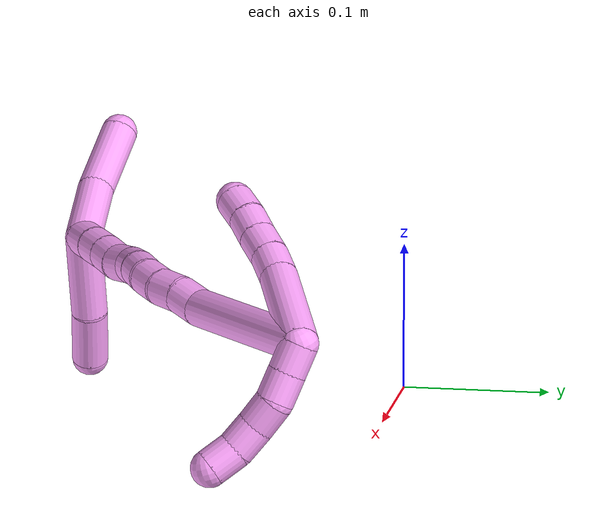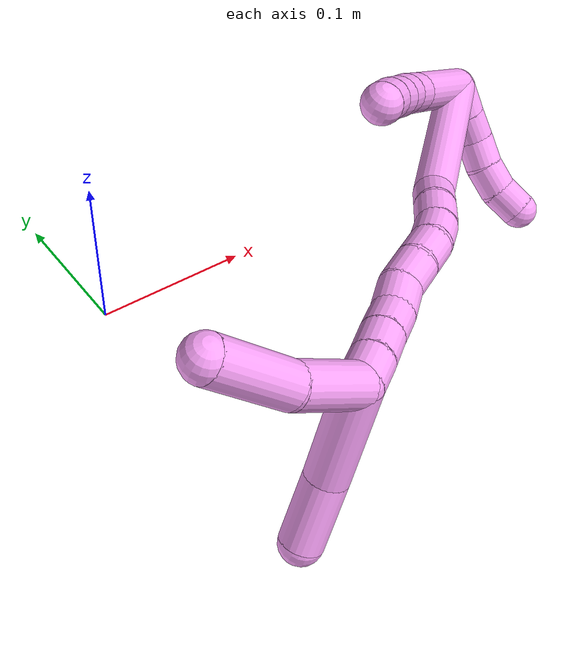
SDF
<sdf version="1.7">
 <world name="default">
  <model name="4">
   <static>0</static>
   <link name="4">
    <collision name="collision-cylinder-e_1_2_8">
     <pose>-0.028597 -0.012975 0.013911 0.750611 -0.983809 -0.416108</pose>
     <geometry><cylinder><radius>0.0125</radius><length>0.068693</length></cylinder></geometry>
     <surface>
      <friction><ode><mu>1.16</mu><mu2>1.16</mu2><slip1>0</slip1><slip2>0</slip2></ode></friction>
      <contact><ode><kp>1e+06</kp><kd>1</kd><max_vel>0</max_vel><min_depth>0.001</min_depth></ode></contact>
     </surface>
    </collision>
    <visual name="visual-cylinder-e_1_2_8">
     <pose>-0.028597 -0.012975 0.013911 0.750611 -0.983809 -0.416108</pose>
     <geometry><cylinder><radius>0.0125</radius><length>0.068693</length></cylinder></geometry>
     <material><ambient>1 0.65098 0.996078 1</ambient></material>
    </visual>
    <collision name="collision-cylinder-e_2_8_9">
     <pose>-0.065273 -0.030426 0.032711 0.74125 -0.883654 -0.363552</pose>
     <geometry><cylinder><radius>0.0125</radius><length>0.020901</length></cylinder></geometry>
     <surface>
      <friction><ode><mu>1.16</mu><mu2>1.16</mu2><slip1>0</slip1><slip2>0</slip2></ode></friction>
      <contact><ode><kp>1e+06</kp><kd>1</kd><max_vel>0</max_vel><min_depth>0.001</min_depth></ode></contact>
     </surface>
    </collision>
    <visual name="visual-cylinder-e_2_8_9">
     <pose>-0.065273 -0.030426 0.032711 0.74125 -0.883654 -0.363552</pose>
     <geometry><cylinder><radius>0.0125</radius><length>0.020901</length></cylinder></geometry>
     <material><ambient>1 0.65098 0.996078 1</ambient></material>
    </visual>
    <collision name="collision-cylinder-e_3_9_10">
     <pose>-0.080615 -0.040122 0.042507 0.816338 -0.792375 -0.357927</pose>
     <geometry><cylinder><radius>0.0125</radius><length>0.020403</length></cylinder></geometry>
     <surface>
      <friction><ode><mu>1.16</mu><mu2>1.16</mu2><slip1>0</slip1><slip2>0</slip2></ode></friction>
      <contact><ode><kp>1e+06</kp><kd>1</kd><max_vel>0</max_vel><min_depth>0.001</min_depth></ode></contact>
     </surface>
    </collision>
    <visual name="visual-cylinder-e_3_9_10">
     <pose>-0.080615 -0.040122 0.042507 0.816338 -0.792375 -0.357927</pose>
     <geometry><cylinder><radius>0.0125</radius><length>0.020403</length></cylinder></geometry>
     <material><ambient>1 0.65098 0.996078 1</ambient></material>
    </visual>
    <collision name="collision-cylinder-e_4_10_11">
     <pose>-0.095113 -0.050112 0.052403 0.762992 -0.808745 -0.340034</pose>
     <geometry><cylinder><radius>0.0125</radius><length>0.02</length></cylinder></geometry>
     <surface>
      <friction><ode><mu>1.16</mu><mu2>1.16</mu2><slip1>0</slip1><slip2>0</slip2></ode></friction>
      <contact><ode><kp>1e+06</kp><kd>1</kd><max_vel>0</max_vel><min_depth>0.001</min_depth></ode></contact>
     </surface>
    </collision>
    <visual name="visual-cylinder-e_4_10_11">
     <pose>-0.095113 -0.050112 0.052403 0.762992 -0.808745 -0.340034</pose>
     <geometry><cylinder><radius>0.0125</radius><length>0.02</length></cylinder></geometry>
     <material><ambient>1 0.65098 0.996078 1</ambient></material>
    </visual>
    <collision name="collision-cylinder-e_5_11_6">
     <pose>-0.109274 -0.060434 0.062003 0.877689 -0.764944 -0.373244</pose>
     <geometry><cylinder><radius>0.0125</radius><length>0.020004</length></cylinder></geometry>
     <surface>
      <friction><ode><mu>1.16</mu><mu2>1.16</mu2><slip1>0</slip1><slip2>0</slip2></ode></friction>
      <contact><ode><kp>1e+06</kp><kd>1</kd><max_vel>0</max_vel><min_depth>0.001</min_depth></ode></contact>
     </surface>
    </collision>
    <visual name="visual-cylinder-e_5_11_6">
     <pose>-0.109274 -0.060434 0.062003 0.877689 -0.764944 -0.373244</pose>
     <geometry><cylinder><radius>0.0125</radius><length>0.020004</length></cylinder></geometry>
     <material><ambient>1 0.65098 0.996078 1</ambient></material>
    </visual>
    <collision name="collision-cylinder-e_1_2_12">
     <pose>0.004015 -0.005563 -0.007276 2.48884 0.413156 1.10875</pose>
     <geometry><cylinder><radius>0.0125</radius><length>0.02</length></cylinder></geometry>
     <surface>
      <friction><ode><mu>1.16</mu><mu2>1.16</mu2><slip1>0</slip1><slip2>0</slip2></ode></friction>
      <contact><ode><kp>1e+06</kp><kd>1</kd><max_vel>0</max_vel><min_depth>0.001</min_depth></ode></contact>
     </surface>
    </collision>
    <visual name="visual-cylinder-e_1_2_12">
     <pose>0.004015 -0.005563 -0.007276 2.48884 0.413156 1.10875</pose>
     <geometry><cylinder><radius>0.0125</radius><length>0.02</length></cylinder></geometry>
     <material><ambient>1 0.65098 0.996078 1</ambient></material>
    </visual>
    <collision name="collision-cylinder-e_2_12_13">
     <pose>0.012387 -0.016563 -0.021724 2.49298 0.450808 1.1972</pose>
     <geometry><cylinder><radius>0.0125</radius><length>0.02</length></cylinder></geometry>
     <surface>
      <friction><ode><mu>1.16</mu><mu2>1.16</mu2><slip1>0</slip1><slip2>0</slip2></ode></friction>
      <contact><ode><kp>1e+06</kp><kd>1</kd><max_vel>0</max_vel><min_depth>0.001</min_depth></ode></contact>
     </surface>
    </collision>
    <visual name="visual-cylinder-e_2_12_13">
     <pose>0.012387 -0.016563 -0.021724 2.49298 0.450808 1.1972</pose>
     <geometry><cylinder><radius>0.0125</radius><length>0.02</length></cylinder></geometry>
     <material><ambient>1 0.65098 0.996078 1</ambient></material>
    </visual>
    <collision name="collision-cylinder-e_3_13_14">
     <pose>0.019301 -0.029787 -0.034627 2.20507 0.258553 0.503175</pose>
     <geometry><cylinder><radius>0.0125</radius><length>0.02</length></cylinder></geometry>
     <surface>
      <friction><ode><mu>1.16</mu><mu2>1.16</mu2><slip1>0</slip1><slip2>0</slip2></ode></friction>
      <contact><ode><kp>1e+06</kp><kd>1</kd><max_vel>0</max_vel><min_depth>0.001</min_depth></ode></contact>
     </surface>
    </collision>
    <visual name="visual-cylinder-e_3_13_14">
     <pose>0.019301 -0.029787 -0.034627 2.20507 0.258553 0.503175</pose>
     <geometry><cylinder><radius>0.0125</radius><length>0.02</length></cylinder></geometry>
     <material><ambient>1 0.65098 0.996078 1</ambient></material>
    </visual>
    <collision name="collision-cylinder-e_4_14_15">
     <pose>0.026178 -0.045081 -0.045353 2.15816 0.446785 0.802341</pose>
     <geometry><cylinder><radius>0.0125</radius><length>0.02</length></cylinder></geometry>
     <surface>
      <friction><ode><mu>1.16</mu><mu2>1.16</mu2><slip1>0</slip1><slip2>0</slip2></ode></friction>
      <contact><ode><kp>1e+06</kp><kd>1</kd><max_vel>0</max_vel><min_depth>0.001</min_depth></ode></contact>
     </surface>
    </collision>
    <visual name="visual-cylinder-e_4_14_15">
     <pose>0.026178 -0.045081 -0.045353 2.15816 0.446785 0.802341</pose>
     <geometry><cylinder><radius>0.0125</radius><length>0.02</length></cylinder></geometry>
     <material><ambient>1 0.65098 0.996078 1</ambient></material>
    </visual>
    <collision name="collision-cylinder-e_5_15_5">
     <pose>0.036154 -0.060444 -0.052865 1.88057 0.600997 0.802991</pose>
     <geometry><cylinder><radius>0.0125</radius><length>0.02</length></cylinder></geometry>
     <surface>
      <friction><ode><mu>1.16</mu><mu2>1.16</mu2><slip1>0</slip1><slip2>0</slip2></ode></friction>
      <contact><ode><kp>1e+06</kp><kd>1</kd><max_vel>0</max_vel><min_depth>0.001</min_depth></ode></contact>
     </surface>
    </collision>
    <visual name="visual-cylinder-e_5_15_5">
     <pose>0.036154 -0.060444 -0.052865 1.88057 0.600997 0.802991</pose>
     <geometry><cylinder><radius>0.0125</radius><length>0.02</length></cylinder></geometry>
     <material><ambient>1 0.65098 0.996078 1</ambient></material>
    </visual>
    <collision name="collision-cylinder-e_1_2_16">
     <pose>-0.036287 -0.047121 0.006848 1.42647 -0.651187 -0.568365</pose>
     <geometry><cylinder><radius>0.0125</radius><length>0.119733</length></cylinder></geometry>
     <surface>
      <friction><ode><mu>1.16</mu><mu2>1.16</mu2><slip1>0</slip1><slip2>0</slip2></ode></friction>
      <contact><ode><kp>1e+06</kp><kd>1</kd><max_vel>0</max_vel><min_depth>0.001</min_depth></ode></contact>
     </surface>
    </collision>
    <visual name="visual-cylinder-e_1_2_16">
     <pose>-0.036287 -0.047121 0.006848 1.42647 -0.651187 -0.568365</pose>
     <geometry><cylinder><radius>0.0125</radius><length>0.119733</length></cylinder></geometry>
     <material><ambient>1 0.65098 0.996078 1</ambient></material>
    </visual>
    <collision name="collision-cylinder-e_2_16_17">
     <pose>-0.077817 -0.101854 0.017788 1.07765 -0.545314 -0.33127</pose>
     <geometry><cylinder><radius>0.0125</radius><length>0.020218</length></cylinder></geometry>
     <surface>
      <friction><ode><mu>1.16</mu><mu2>1.16</mu2><slip1>0</slip1><slip2>0</slip2></ode></friction>
      <contact><ode><kp>1e+06</kp><kd>1</kd><max_vel>0</max_vel><min_depth>0.001</min_depth></ode></contact>
     </surface>
    </collision>
    <visual name="visual-cylinder-e_2_16_17">
     <pose>-0.077817 -0.101854 0.017788 1.07765 -0.545314 -0.33127</pose>
     <geometry><cylinder><radius>0.0125</radius><length>0.020218</length></cylinder></geometry>
     <material><ambient>1 0.65098 0.996078 1</ambient></material>
    </visual>
    <collision name="collision-cylinder-e_3_17_18">
     <pose>-0.088005 -0.117798 0.024383 1.27896 -0.516867 -0.388256</pose>
     <geometry><cylinder><radius>0.0125</radius><length>0.02001</length></cylinder></geometry>
     <surface>
      <friction><ode><mu>1.16</mu><mu2>1.16</mu2><slip1>0</slip1><slip2>0</slip2></ode></friction>
      <contact><ode><kp>1e+06</kp><kd>1</kd><max_vel>0</max_vel><min_depth>0.001</min_depth></ode></contact>
     </surface>
    </collision>
    <visual name="visual-cylinder-e_3_17_18">
     <pose>-0.088005 -0.117798 0.024383 1.27896 -0.516867 -0.388256</pose>
     <geometry><cylinder><radius>0.0125</radius><length>0.02001</length></cylinder></geometry>
     <material><ambient>1 0.65098 0.996078 1</ambient></material>
    </visual>
    <collision name="collision-cylinder-e_4_18_19">
     <pose>-0.099549 -0.133258 0.029321 1.24153 -0.719387 -0.525375</pose>
     <geometry><cylinder><radius>0.0125</radius><length>0.020034</length></cylinder></geometry>
     <surface>
      <friction><ode><mu>1.16</mu><mu2>1.16</mu2><slip1>0</slip1><slip2>0</slip2></ode></friction>
      <contact><ode><kp>1e+06</kp><kd>1</kd><max_vel>0</max_vel><min_depth>0.001</min_depth></ode></contact>
     </surface>
    </collision>
    <visual name="visual-cylinder-e_4_18_19">
     <pose>-0.099549 -0.133258 0.029321 1.24153 -0.719387 -0.525375</pose>
     <geometry><cylinder><radius>0.0125</radius><length>0.020034</length></cylinder></geometry>
     <material><ambient>1 0.65098 0.996078 1</ambient></material>
    </visual>
    <collision name="collision-cylinder-e_5_19_20">
     <pose>-0.114097 -0.146405 0.032579 1.43514 -0.918395 -0.814799</pose>
     <geometry><cylinder><radius>0.0125</radius><length>0.020004</length></cylinder></geometry>
     <surface>
      <friction><ode><mu>1.16</mu><mu2>1.16</mu2><slip1>0</slip1><slip2>0</slip2></ode></friction>
      <contact><ode><kp>1e+06</kp><kd>1</kd><max_vel>0</max_vel><min_depth>0.001</min_depth></ode></contact>
     </surface>
    </collision>
    <visual name="visual-cylinder-e_5_19_20">
     <pose>-0.114097 -0.146405 0.032579 1.43514 -0.918395 -0.814799</pose>
     <geometry><cylinder><radius>0.0125</radius><length>0.020004</length></cylinder></geometry>
     <material><ambient>1 0.65098 0.996078 1</ambient></material>
    </visual>
    <collision name="collision-cylinder-e_6_20_21">
     <pose>-0.13002 -0.158412 0.032692 1.68852 -0.92313 -1.02051</pose>
     <geometry><cylinder><radius>0.0125</radius><length>0.02</length></cylinder></geometry>
     <surface>
      <friction><ode><mu>1.16</mu><mu2>1.16</mu2><slip1>0</slip1><slip2>0</slip2></ode></friction>
      <contact><ode><kp>1e+06</kp><kd>1</kd><max_vel>0</max_vel><min_depth>0.001</min_depth></ode></contact>
     </surface>
    </collision>
    <visual name="visual-cylinder-e_6_20_21">
     <pose>-0.13002 -0.158412 0.032692 1.68852 -0.92313 -1.02051</pose>
     <geometry><cylinder><radius>0.0125</radius><length>0.02</length></cylinder></geometry>
     <material><ambient>1 0.65098 0.996078 1</ambient></material>
    </visual>
    <collision name="collision-cylinder-e_7_21_22">
     <pose>-0.144232 -0.172218 0.032209 1.54187 -0.673406 -0.655568</pose>
     <geometry><cylinder><radius>0.0125</radius><length>0.02</length></cylinder></geometry>
     <surface>
      <friction><ode><mu>1.16</mu><mu2>1.16</mu2><slip1>0</slip1><slip2>0</slip2></ode></friction>
      <contact><ode><kp>1e+06</kp><kd>1</kd><max_vel>0</max_vel><min_depth>0.001</min_depth></ode></contact>
     </surface>
    </collision>
    <visual name="visual-cylinder-e_7_21_22">
     <pose>-0.144232 -0.172218 0.032209 1.54187 -0.673406 -0.655568</pose>
     <geometry><cylinder><radius>0.0125</radius><length>0.02</length></cylinder></geometry>
     <material><ambient>1 0.65098 0.996078 1</ambient></material>
    </visual>
    <collision name="collision-cylinder-e_8_22_23">
     <pose>-0.157618 -0.186747 0.034384 1.2884 -0.796514 -0.612168</pose>
     <geometry><cylinder><radius>0.0125</radius><length>0.02</length></cylinder></geometry>
     <surface>
      <friction><ode><mu>1.16</mu><mu2>1.16</mu2><slip1>0</slip1><slip2>0</slip2></ode></friction>
      <contact><ode><kp>1e+06</kp><kd>1</kd><max_vel>0</max_vel><min_depth>0.001</min_depth></ode></contact>
     </surface>
    </collision>
    <visual name="visual-cylinder-e_8_22_23">
     <pose>-0.157618 -0.186747 0.034384 1.2884 -0.796514 -0.612168</pose>
     <geometry><cylinder><radius>0.0125</radius><length>0.02</length></cylinder></geometry>
     <material><ambient>1 0.65098 0.996078 1</ambient></material>
    </visual>
    <collision name="collision-cylinder-e_9_23_24">
     <pose>-0.171674 -0.200471 0.038111 1.32225 -0.762455 -0.604519</pose>
     <geometry><cylinder><radius>0.0125</radius><length>0.02</length></cylinder></geometry>
     <surface>
      <friction><ode><mu>1.16</mu><mu2>1.16</mu2><slip1>0</slip1><slip2>0</slip2></ode></friction>
      <contact><ode><kp>1e+06</kp><kd>1</kd><max_vel>0</max_vel><min_depth>0.001</min_depth></ode></contact>
     </surface>
    </collision>
    <visual name="visual-cylinder-e_9_23_24">
     <pose>-0.171674 -0.200471 0.038111 1.32225 -0.762455 -0.604519</pose>
     <geometry><cylinder><radius>0.0125</radius><length>0.02</length></cylinder></geometry>
     <material><ambient>1 0.65098 0.996078 1</ambient></material>
    </visual>
    <collision name="collision-cylinder-e_10_24_1">
     <pose>-0.185773 -0.214321 0.041114 1.39377 -0.802579 -0.682495</pose>
     <geometry><cylinder><radius>0.0125</radius><length>0.02</length></cylinder></geometry>
     <surface>
      <friction><ode><mu>1.16</mu><mu2>1.16</mu2><slip1>0</slip1><slip2>0</slip2></ode></friction>
      <contact><ode><kp>1e+06</kp><kd>1</kd><max_vel>0</max_vel><min_depth>0.001</min_depth></ode></contact>
     </surface>
    </collision>
    <visual name="visual-cylinder-e_10_24_1">
     <pose>-0.185773 -0.214321 0.041114 1.39377 -0.802579 -0.682495</pose>
     <geometry><cylinder><radius>0.0125</radius><length>0.02</length></cylinder></geometry>
     <material><ambient>1 0.65098 0.996078 1</ambient></material>
    </visual>
    <collision name="collision-cylinder-e_1_1_25">
     <pose>-0.215059 -0.222109 0.05168 0.101118 -1.16888 -0.066925</pose>
     <geometry><cylinder><radius>0.0125</radius><length>0.048015</length></cylinder></geometry>
     <surface>
      <friction><ode><mu>1.16</mu><mu2>1.16</mu2><slip1>0</slip1><slip2>0</slip2></ode></friction>
      <contact><ode><kp>1e+06</kp><kd>1</kd><max_vel>0</max_vel><min_depth>0.001</min_depth></ode></contact>
     </surface>
    </collision>
    <visual name="visual-cylinder-e_1_1_25">
     <pose>-0.215059 -0.222109 0.05168 0.101118 -1.16888 -0.066925</pose>
     <geometry><cylinder><radius>0.0125</radius><length>0.048015</length></cylinder></geometry>
     <material><ambient>1 0.65098 0.996078 1</ambient></material>
    </visual>
    <collision name="collision-cylinder-e_2_25_4">
     <pose>-0.259799 -0.218573 0.072968 -0.359143 -1.05776 0.211383</pose>
     <geometry><cylinder><radius>0.0125</radius><length>0.051985</length></cylinder></geometry>
     <surface>
      <friction><ode><mu>1.16</mu><mu2>1.16</mu2><slip1>0</slip1><slip2>0</slip2></ode></friction>
      <contact><ode><kp>1e+06</kp><kd>1</kd><max_vel>0</max_vel><min_depth>0.001</min_depth></ode></contact>
     </surface>
    </collision>
    <visual name="visual-cylinder-e_2_25_4">
     <pose>-0.259799 -0.218573 0.072968 -0.359143 -1.05776 0.211383</pose>
     <geometry><cylinder><radius>0.0125</radius><length>0.051985</length></cylinder></geometry>
     <material><ambient>1 0.65098 0.996078 1</ambient></material>
    </visual>
    <collision name="collision-cylinder-e_1_1_26">
     <pose>-0.197058 -0.230993 0.014835 2.79824 -0.139255 -0.764863</pose>
     <geometry><cylinder><radius>0.0125</radius><length>0.058986</length></cylinder></geometry>
     <surface>
      <friction><ode><mu>1.16</mu><mu2>1.16</mu2><slip1>0</slip1><slip2>0</slip2></ode></friction>
      <contact><ode><kp>1e+06</kp><kd>1</kd><max_vel>0</max_vel><min_depth>0.001</min_depth></ode></contact>
     </surface>
    </collision>
    <visual name="visual-cylinder-e_1_1_26">
     <pose>-0.197058 -0.230993 0.014835 2.79824 -0.139255 -0.764863</pose>
     <geometry><cylinder><radius>0.0125</radius><length>0.058986</length></cylinder></geometry>
     <material><ambient>1 0.65098 0.996078 1</ambient></material>
    </visual>
    <collision name="collision-cylinder-e_2_26_3">
     <pose>-0.206383 -0.249517 -0.03049 2.68787 -0.257957 -1.02382</pose>
     <geometry><cylinder><radius>0.0125</radius><length>0.041014</length></cylinder></geometry>
     <surface>
      <friction><ode><mu>1.16</mu><mu2>1.16</mu2><slip1>0</slip1><slip2>0</slip2></ode></friction>
      <contact><ode><kp>1e+06</kp><kd>1</kd><max_vel>0</max_vel><min_depth>0.001</min_depth></ode></contact>
     </surface>
    </collision>
    <visual name="visual-cylinder-e_2_26_3">
     <pose>-0.206383 -0.249517 -0.03049 2.68787 -0.257957 -1.02382</pose>
     <geometry><cylinder><radius>0.0125</radius><length>0.041014</length></cylinder></geometry>
     <material><ambient>1 0.65098 0.996078 1</ambient></material>
    </visual>
    <collision name="collision-sphere-3">
     <pose>-0.211615 -0.258208 -0.048313 0 -0 0</pose>
     <geometry><sphere><radius>0.0125</radius></sphere></geometry>
     <surface>
      <friction><ode><mu>1.16</mu><mu2>1.16</mu2><slip1>0</slip1><slip2>0</slip2></ode></friction>
      <contact><ode><kp>1e+06</kp><kd>1</kd><max_vel>0</max_vel><min_depth>0.001</min_depth></ode></contact>
     </surface>
    </collision>
    <visual name="visual-sphere-3">
     <pose>-0.211615 -0.258208 -0.048313 0 -0 0</pose>
     <geometry><sphere><radius>0.0125</radius></sphere></geometry>
     <material><ambient>1 0.65098 0.996078 1</ambient></material>
    </visual>
    <collision name="collision-sphere-26">
     <pose>-0.201152 -0.240826 -0.012668 0 -0 0</pose>
     <geometry><sphere><radius>0.0125</radius></sphere></geometry>
     <surface>
      <friction><ode><mu>1.16</mu><mu2>1.16</mu2><slip1>0</slip1><slip2>0</slip2></ode></friction>
      <contact><ode><kp>1e+06</kp><kd>1</kd><max_vel>0</max_vel><min_depth>0.001</min_depth></ode></contact>
     </surface>
    </collision>
    <visual name="visual-sphere-26">
     <pose>-0.201152 -0.240826 -0.012668 0 -0 0</pose>
     <geometry><sphere><radius>0.0125</radius></sphere></geometry>
     <material><ambient>1 0.65098 0.996078 1</ambient></material>
    </visual>
    <collision name="collision-sphere-4">
     <pose>-0.282446 -0.214089 0.084911 0 -0 0</pose>
     <geometry><sphere><radius>0.0125</radius></sphere></geometry>
     <surface>
      <friction><ode><mu>1.16</mu><mu2>1.16</mu2><slip1>0</slip1><slip2>0</slip2></ode></friction>
      <contact><ode><kp>1e+06</kp><kd>1</kd><max_vel>0</max_vel><min_depth>0.001</min_depth></ode></contact>
     </surface>
    </collision>
    <visual name="visual-sphere-4">
     <pose>-0.282446 -0.214089 0.084911 0 -0 0</pose>
     <geometry><sphere><radius>0.0125</radius></sphere></geometry>
     <material><ambient>1 0.65098 0.996078 1</ambient></material>
    </visual>
    <collision name="collision-sphere-25">
     <pose>-0.237153 -0.223057 0.061024 0 -0 0</pose>
     <geometry><sphere><radius>0.0125</radius></sphere></geometry>
     <surface>
      <friction><ode><mu>1.16</mu><mu2>1.16</mu2><slip1>0</slip1><slip2>0</slip2></ode></friction>
      <contact><ode><kp>1e+06</kp><kd>1</kd><max_vel>0</max_vel><min_depth>0.001</min_depth></ode></contact>
     </surface>
    </collision>
    <visual name="visual-sphere-25">
     <pose>-0.237153 -0.223057 0.061024 0 -0 0</pose>
     <geometry><sphere><radius>0.0125</radius></sphere></geometry>
     <material><ambient>1 0.65098 0.996078 1</ambient></material>
    </visual>
    <collision name="collision-sphere-1">
     <pose>-0.192964 -0.221161 0.042337 0 -0 0</pose>
     <geometry><sphere><radius>0.0125</radius></sphere></geometry>
     <surface>
      <friction><ode><mu>1.16</mu><mu2>1.16</mu2><slip1>0</slip1><slip2>0</slip2></ode></friction>
      <contact><ode><kp>1e+06</kp><kd>1</kd><max_vel>0</max_vel><min_depth>0.001</min_depth></ode></contact>
     </surface>
    </collision>
    <visual name="visual-sphere-1">
     <pose>-0.192964 -0.221161 0.042337 0 -0 0</pose>
     <geometry><sphere><radius>0.0125</radius></sphere></geometry>
     <material><ambient>1 0.65098 0.996078 1</ambient></material>
    </visual>
    <collision name="collision-sphere-24">
     <pose>-0.178581 -0.207481 0.03989 0 -0 0</pose>
     <geometry><sphere><radius>0.0125</radius></sphere></geometry>
     <surface>
      <friction><ode><mu>1.16</mu><mu2>1.16</mu2><slip1>0</slip1><slip2>0</slip2></ode></friction>
      <contact><ode><kp>1e+06</kp><kd>1</kd><max_vel>0</max_vel><min_depth>0.001</min_depth></ode></contact>
     </surface>
    </collision>
    <visual name="visual-sphere-24">
     <pose>-0.178581 -0.207481 0.03989 0 -0 0</pose>
     <geometry><sphere><radius>0.0125</radius></sphere></geometry>
     <material><ambient>1 0.65098 0.996078 1</ambient></material>
    </visual>
    <collision name="collision-sphere-23">
     <pose>-0.164767 -0.193462 0.036332 0 -0 0</pose>
     <geometry><sphere><radius>0.0125</radius></sphere></geometry>
     <surface>
      <friction><ode><mu>1.16</mu><mu2>1.16</mu2><slip1>0</slip1><slip2>0</slip2></ode></friction>
      <contact><ode><kp>1e+06</kp><kd>1</kd><max_vel>0</max_vel><min_depth>0.001</min_depth></ode></contact>
     </surface>
    </collision>
    <visual name="visual-sphere-23">
     <pose>-0.164767 -0.193462 0.036332 0 -0 0</pose>
     <geometry><sphere><radius>0.0125</radius></sphere></geometry>
     <material><ambient>1 0.65098 0.996078 1</ambient></material>
    </visual>
    <collision name="collision-sphere-22">
     <pose>-0.150469 -0.180032 0.032435 0 -0 0</pose>
     <geometry><sphere><radius>0.0125</radius></sphere></geometry>
     <surface>
      <friction><ode><mu>1.16</mu><mu2>1.16</mu2><slip1>0</slip1><slip2>0</slip2></ode></friction>
      <contact><ode><kp>1e+06</kp><kd>1</kd><max_vel>0</max_vel><min_depth>0.001</min_depth></ode></contact>
     </surface>
    </collision>
    <visual name="visual-sphere-22">
     <pose>-0.150469 -0.180032 0.032435 0 -0 0</pose>
     <geometry><sphere><radius>0.0125</radius></sphere></geometry>
     <material><ambient>1 0.65098 0.996078 1</ambient></material>
    </visual>
    <collision name="collision-sphere-21">
     <pose>-0.137995 -0.164404 0.031983 0 -0 0</pose>
     <geometry><sphere><radius>0.0125</radius></sphere></geometry>
     <surface>
      <friction><ode><mu>1.16</mu><mu2>1.16</mu2><slip1>0</slip1><slip2>0</slip2></ode></friction>
      <contact><ode><kp>1e+06</kp><kd>1</kd><max_vel>0</max_vel><min_depth>0.001</min_depth></ode></contact>
     </surface>
    </collision>
    <visual name="visual-sphere-21">
     <pose>-0.137995 -0.164404 0.031983 0 -0 0</pose>
     <geometry><sphere><radius>0.0125</radius></sphere></geometry>
     <material><ambient>1 0.65098 0.996078 1</ambient></material>
    </visual>
    <collision name="collision-sphere-6">
     <pose>-0.1162 -0.065985 0.066614 0 -0 0</pose>
     <geometry><sphere><radius>0.0125</radius></sphere></geometry>
     <surface>
      <friction><ode><mu>1.16</mu><mu2>1.16</mu2><slip1>0</slip1><slip2>0</slip2></ode></friction>
      <contact><ode><kp>1e+06</kp><kd>1</kd><max_vel>0</max_vel><min_depth>0.001</min_depth></ode></contact>
     </surface>
    </collision>
    <visual name="visual-sphere-6">
     <pose>-0.1162 -0.065985 0.066614 0 -0 0</pose>
     <geometry><sphere><radius>0.0125</radius></sphere></geometry>
     <material><ambient>1 0.65098 0.996078 1</ambient></material>
    </visual>
    <collision name="collision-sphere-11">
     <pose>-0.102348 -0.054884 0.057393 0 -0 0</pose>
     <geometry><sphere><radius>0.0125</radius></sphere></geometry>
     <surface>
      <friction><ode><mu>1.16</mu><mu2>1.16</mu2><slip1>0</slip1><slip2>0</slip2></ode></friction>
      <contact><ode><kp>1e+06</kp><kd>1</kd><max_vel>0</max_vel><min_depth>0.001</min_depth></ode></contact>
     </surface>
    </collision>
    <visual name="visual-sphere-11">
     <pose>-0.102348 -0.054884 0.057393 0 -0 0</pose>
     <geometry><sphere><radius>0.0125</radius></sphere></geometry>
     <material><ambient>1 0.65098 0.996078 1</ambient></material>
    </visual>
    <collision name="collision-sphere-10">
     <pose>-0.087879 -0.045341 0.047413 0 -0 0</pose>
     <geometry><sphere><radius>0.0125</radius></sphere></geometry>
     <surface>
      <friction><ode><mu>1.16</mu><mu2>1.16</mu2><slip1>0</slip1><slip2>0</slip2></ode></friction>
      <contact><ode><kp>1e+06</kp><kd>1</kd><max_vel>0</max_vel><min_depth>0.001</min_depth></ode></contact>
     </surface>
    </collision>
    <visual name="visual-sphere-10">
     <pose>-0.087879 -0.045341 0.047413 0 -0 0</pose>
     <geometry><sphere><radius>0.0125</radius></sphere></geometry>
     <material><ambient>1 0.65098 0.996078 1</ambient></material>
    </visual>
    <collision name="collision-sphere-9">
     <pose>-0.073352 -0.034902 0.037601 0 -0 0</pose>
     <geometry><sphere><radius>0.0125</radius></sphere></geometry>
     <surface>
      <friction><ode><mu>1.16</mu><mu2>1.16</mu2><slip1>0</slip1><slip2>0</slip2></ode></friction>
      <contact><ode><kp>1e+06</kp><kd>1</kd><max_vel>0</max_vel><min_depth>0.001</min_depth></ode></contact>
     </surface>
    </collision>
    <visual name="visual-sphere-9">
     <pose>-0.073352 -0.034902 0.037601 0 -0 0</pose>
     <geometry><sphere><radius>0.0125</radius></sphere></geometry>
     <material><ambient>1 0.65098 0.996078 1</ambient></material>
    </visual>
    <collision name="collision-sphere-2">
     <geometry><sphere><radius>0.0125</radius></sphere></geometry>
     <surface>
      <friction><ode><mu>1.16</mu><mu2>1.16</mu2><slip1>0</slip1><slip2>0</slip2></ode></friction>
      <contact><ode><kp>1e+06</kp><kd>1</kd><max_vel>0</max_vel><min_depth>0.001</min_depth></ode></contact>
     </surface>
    </collision>
    <visual name="visual-sphere-2">
     <geometry><sphere><radius>0.0125</radius></sphere></geometry>
     <material><ambient>1 0.65098 0.996078 1</ambient></material>
    </visual>
    <collision name="collision-sphere-19">
     <pose>-0.10615 -0.140388 0.031758 0 -0 0</pose>
     <geometry><sphere><radius>0.0125</radius></sphere></geometry>
     <surface>
      <friction><ode><mu>1.16</mu><mu2>1.16</mu2><slip1>0</slip1><slip2>0</slip2></ode></friction>
      <contact><ode><kp>1e+06</kp><kd>1</kd><max_vel>0</max_vel><min_depth>0.001</min_depth></ode></contact>
     </surface>
    </collision>
    <visual name="visual-sphere-19">
     <pose>-0.10615 -0.140388 0.031758 0 -0 0</pose>
     <geometry><sphere><radius>0.0125</radius></sphere></geometry>
     <material><ambient>1 0.65098 0.996078 1</ambient></material>
    </visual>
    <collision name="collision-sphere-8">
     <pose>-0.057194 -0.02595 0.027822 0 -0 0</pose>
     <geometry><sphere><radius>0.0125</radius></sphere></geometry>
     <surface>
      <friction><ode><mu>1.16</mu><mu2>1.16</mu2><slip1>0</slip1><slip2>0</slip2></ode></friction>
      <contact><ode><kp>1e+06</kp><kd>1</kd><max_vel>0</max_vel><min_depth>0.001</min_depth></ode></contact>
     </surface>
    </collision>
    <visual name="visual-sphere-8">
     <pose>-0.057194 -0.02595 0.027822 0 -0 0</pose>
     <geometry><sphere><radius>0.0125</radius></sphere></geometry>
     <material><ambient>1 0.65098 0.996078 1</ambient></material>
    </visual>
    <collision name="collision-sphere-12">
     <pose>0.00803 -0.011125 -0.014551 0 -0 0</pose>
     <geometry><sphere><radius>0.0125</radius></sphere></geometry>
     <surface>
      <friction><ode><mu>1.16</mu><mu2>1.16</mu2><slip1>0</slip1><slip2>0</slip2></ode></friction>
      <contact><ode><kp>1e+06</kp><kd>1</kd><max_vel>0</max_vel><min_depth>0.001</min_depth></ode></contact>
     </surface>
    </collision>
    <visual name="visual-sphere-12">
     <pose>0.00803 -0.011125 -0.014551 0 -0 0</pose>
     <geometry><sphere><radius>0.0125</radius></sphere></geometry>
     <material><ambient>1 0.65098 0.996078 1</ambient></material>
    </visual>
    <collision name="collision-sphere-13">
     <pose>0.016744 -0.022 -0.028898 0 -0 0</pose>
     <geometry><sphere><radius>0.0125</radius></sphere></geometry>
     <surface>
      <friction><ode><mu>1.16</mu><mu2>1.16</mu2><slip1>0</slip1><slip2>0</slip2></ode></friction>
      <contact><ode><kp>1e+06</kp><kd>1</kd><max_vel>0</max_vel><min_depth>0.001</min_depth></ode></contact>
     </surface>
    </collision>
    <visual name="visual-sphere-13">
     <pose>0.016744 -0.022 -0.028898 0 -0 0</pose>
     <geometry><sphere><radius>0.0125</radius></sphere></geometry>
     <material><ambient>1 0.65098 0.996078 1</ambient></material>
    </visual>
    <collision name="collision-sphere-14">
     <pose>0.021858 -0.037575 -0.040356 0 -0 0</pose>
     <geometry><sphere><radius>0.0125</radius></sphere></geometry>
     <surface>
      <friction><ode><mu>1.16</mu><mu2>1.16</mu2><slip1>0</slip1><slip2>0</slip2></ode></friction>
      <contact><ode><kp>1e+06</kp><kd>1</kd><max_vel>0</max_vel><min_depth>0.001</min_depth></ode></contact>
     </surface>
    </collision>
    <visual name="visual-sphere-14">
     <pose>0.021858 -0.037575 -0.040356 0 -0 0</pose>
     <geometry><sphere><radius>0.0125</radius></sphere></geometry>
     <material><ambient>1 0.65098 0.996078 1</ambient></material>
    </visual>
    <collision name="collision-sphere-15">
     <pose>0.030499 -0.052588 -0.050351 0 -0 0</pose>
     <geometry><sphere><radius>0.0125</radius></sphere></geometry>
     <surface>
      <friction><ode><mu>1.16</mu><mu2>1.16</mu2><slip1>0</slip1><slip2>0</slip2></ode></friction>
      <contact><ode><kp>1e+06</kp><kd>1</kd><max_vel>0</max_vel><min_depth>0.001</min_depth></ode></contact>
     </surface>
    </collision>
    <visual name="visual-sphere-15">
     <pose>0.030499 -0.052588 -0.050351 0 -0 0</pose>
     <geometry><sphere><radius>0.0125</radius></sphere></geometry>
     <material><ambient>1 0.65098 0.996078 1</ambient></material>
    </visual>
    <collision name="collision-sphere-5">
     <pose>0.041808 -0.068299 -0.05538 0 -0 0</pose>
     <geometry><sphere><radius>0.0125</radius></sphere></geometry>
     <surface>
      <friction><ode><mu>1.16</mu><mu2>1.16</mu2><slip1>0</slip1><slip2>0</slip2></ode></friction>
      <contact><ode><kp>1e+06</kp><kd>1</kd><max_vel>0</max_vel><min_depth>0.001</min_depth></ode></contact>
     </surface>
    </collision>
    <visual name="visual-sphere-5">
     <pose>0.041808 -0.068299 -0.05538 0 -0 0</pose>
     <geometry><sphere><radius>0.0125</radius></sphere></geometry>
     <material><ambient>1 0.65098 0.996078 1</ambient></material>
    </visual>
    <collision name="collision-sphere-16">
     <pose>-0.072574 -0.094241 0.013697 0 -0 0</pose>
     <geometry><sphere><radius>0.0125</radius></sphere></geometry>
     <surface>
      <friction><ode><mu>1.16</mu><mu2>1.16</mu2><slip1>0</slip1><slip2>0</slip2></ode></friction>
      <contact><ode><kp>1e+06</kp><kd>1</kd><max_vel>0</max_vel><min_depth>0.001</min_depth></ode></contact>
     </surface>
    </collision>
    <visual name="visual-sphere-16">
     <pose>-0.072574 -0.094241 0.013697 0 -0 0</pose>
     <geometry><sphere><radius>0.0125</radius></sphere></geometry>
     <material><ambient>1 0.65098 0.996078 1</ambient></material>
    </visual>
    <collision name="collision-sphere-17">
     <pose>-0.083061 -0.109467 0.02188 0 -0 0</pose>
     <geometry><sphere><radius>0.0125</radius></sphere></geometry>
     <surface>
      <friction><ode><mu>1.16</mu><mu2>1.16</mu2><slip1>0</slip1><slip2>0</slip2></ode></friction>
      <contact><ode><kp>1e+06</kp><kd>1</kd><max_vel>0</max_vel><min_depth>0.001</min_depth></ode></contact>
     </surface>
    </collision>
    <visual name="visual-sphere-17">
     <pose>-0.083061 -0.109467 0.02188 0 -0 0</pose>
     <geometry><sphere><radius>0.0125</radius></sphere></geometry>
     <material><ambient>1 0.65098 0.996078 1</ambient></material>
    </visual>
    <collision name="collision-sphere-18">
     <pose>-0.092949 -0.126128 0.026885 0 -0 0</pose>
     <geometry><sphere><radius>0.0125</radius></sphere></geometry>
     <surface>
      <friction><ode><mu>1.16</mu><mu2>1.16</mu2><slip1>0</slip1><slip2>0</slip2></ode></friction>
      <contact><ode><kp>1e+06</kp><kd>1</kd><max_vel>0</max_vel><min_depth>0.001</min_depth></ode></contact>
     </surface>
    </collision>
    <visual name="visual-sphere-18">
     <pose>-0.092949 -0.126128 0.026885 0 -0 0</pose>
     <geometry><sphere><radius>0.0125</radius></sphere></geometry>
     <material><ambient>1 0.65098 0.996078 1</ambient></material>
    </visual>
    <collision name="collision-sphere-20">
     <pose>-0.122045 -0.152421 0.0334 0 -0 0</pose>
     <geometry><sphere><radius>0.0125</radius></sphere></geometry>
     <surface>
      <friction><ode><mu>1.16</mu><mu2>1.16</mu2><slip1>0</slip1><slip2>0</slip2></ode></friction>
      <contact><ode><kp>1e+06</kp><kd>1</kd><max_vel>0</max_vel><min_depth>0.001</min_depth></ode></contact>
     </surface>
    </collision>
    <visual name="visual-sphere-20">
     <pose>-0.122045 -0.152421 0.0334 0 -0 0</pose>
     <geometry><sphere><radius>0.0125</radius></sphere></geometry>
     <material><ambient>1 0.65098 0.996078 1</ambient></material>
    </visual>
    <inertial>
     <pose>-0.105018 -0.117189 0.018579 0 -0 0</pose>
     <mass>0.75</mass>
     <inertia><ixx>3.9e-05</ixx><ixy>0</ixy><ixz>0</ixz><iyy>-7e-06</iyy><iyz>0</iyz><izz>0.000304</izz></inertia>
    </inertial>
   </link>
   <pose>0.260973 -0.028966 0.089963 0.281413 0.179346 -0.174335</pose>
  </model>
 </world>
</sdf>
